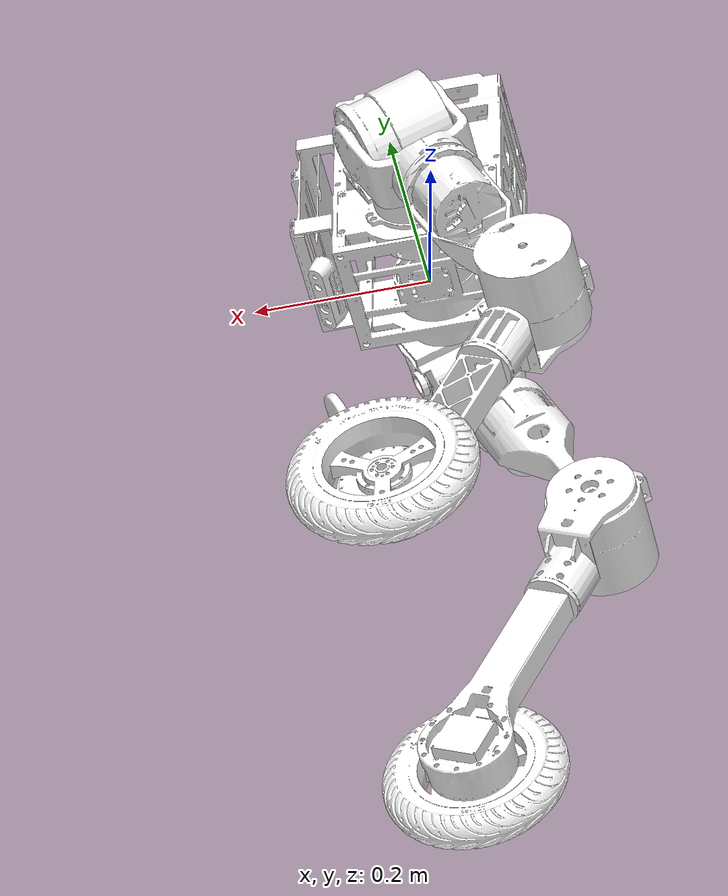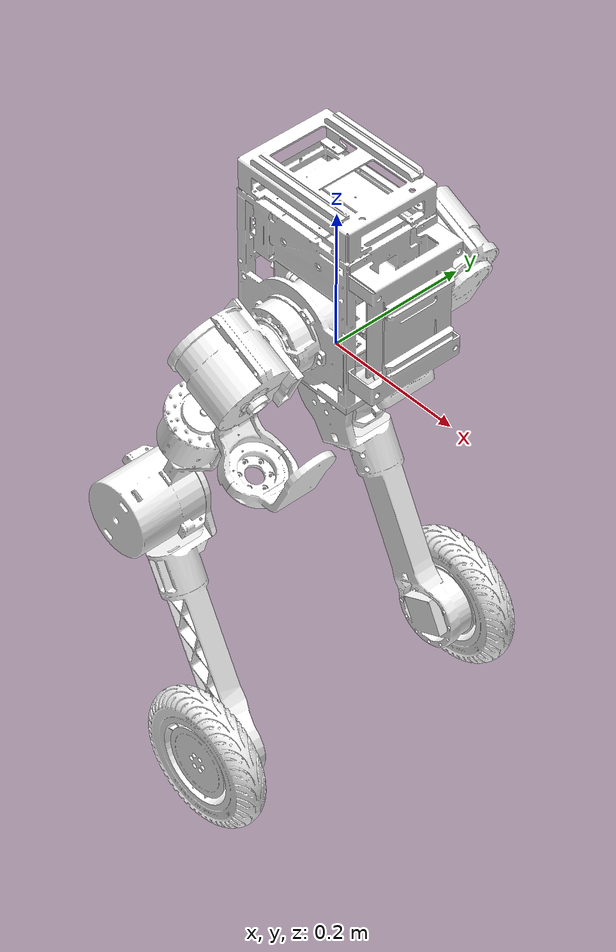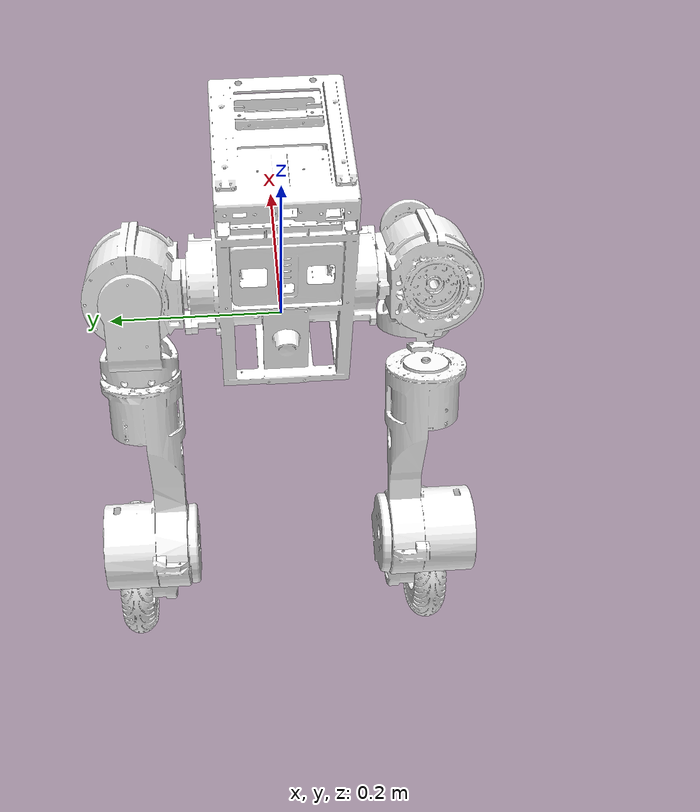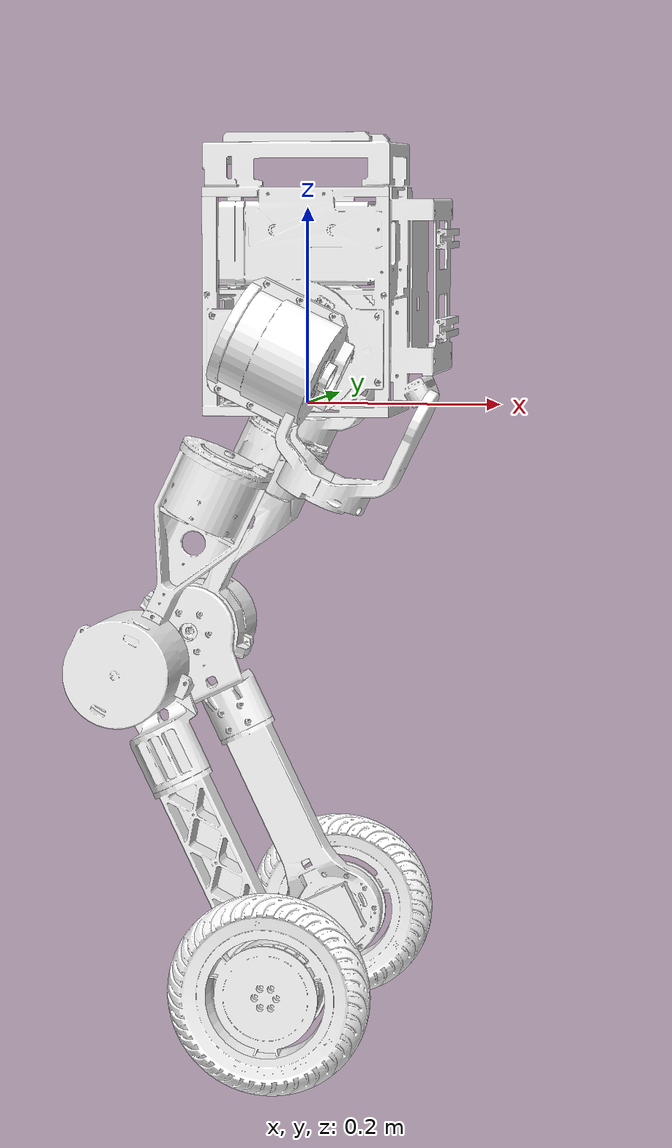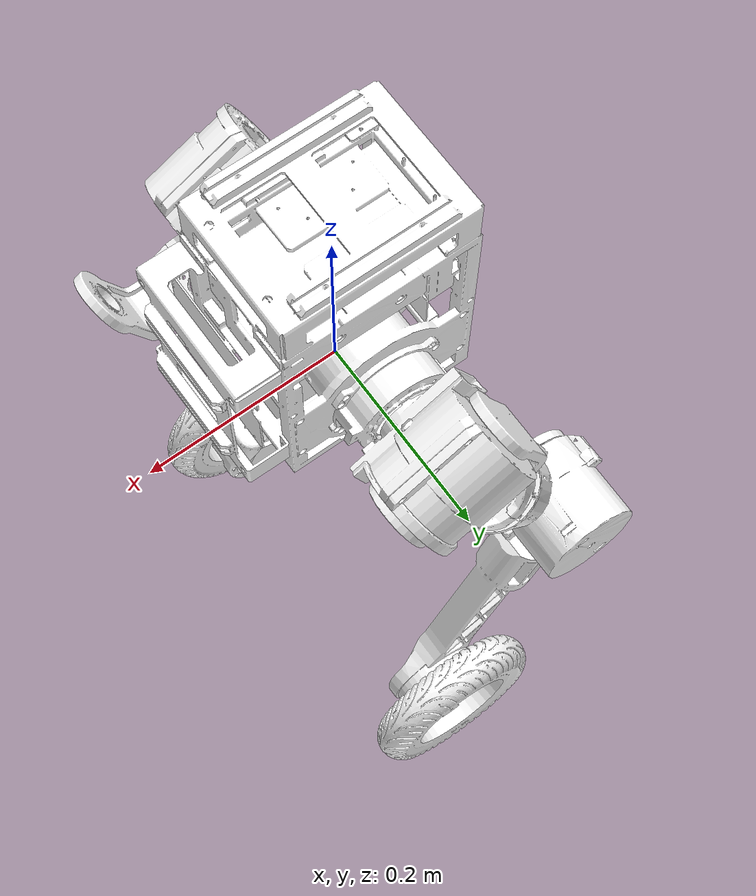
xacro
<?xml version="1.0"?>

<robot name="wf_tron2_description" xmlns:xacro="http://www.ros.org/wiki/xacro">
    <xacro:arg name="use_gazebo" default="false"/>
    <xacro:arg name="use_support" default="false"/>

    <!-- Include all component files -->
    <xacro:include filename="$(find robot_description)/tron2/WF_TRON2/xacro/const.xacro"/>
    <xacro:include filename="$(find robot_description)/tron2/WF_TRON2/xacro/materials.xacro"/>
    <xacro:include filename="$(find robot_description)/tron2/WF_TRON2/xacro/leg.xacro"/>
    <xacro:include filename="$(find robot_description)/tron2/WF_TRON2/xacro/gazebo.xacro"/>
    <xacro:include filename="$(find robot_description)/tron2/WF_TRON2/xacro/ros2_control_interface.xacro"/>

    <!-- Support mode will add an additional stick on the top -->
    <xacro:if value="$(arg use_support)">
        <link name="world"/>
        <joint name="base_static_Joint" type="fixed">
            <origin rpy="0 0 0" xyz="0 0 0.3"/>
            <parent link="world"/>
            <child link="base_Link"/>
        </joint>
    </xacro:if>

    <!-- Base Link -->
    <link name="base_Link">
        <inertial>
            <origin xyz="${base_com_x} ${base_com_y} ${base_com_z}" rpy="0 0 0"/>
            <mass value="${base_mass}"/>
            <inertia ixx="${base_ixx}" ixy="${base_ixy}" ixz="${base_ixz}"
                     iyy="${base_iyy}" iyz="${base_iyz}" izz="${base_izz}"/>
        </inertial>
        <visual>
            <origin xyz="0 0 0" rpy="0 0 0"/>
            <geometry>
                <mesh filename="package://robot_description/tron2/WF_TRON2/meshes/base_Link.STL"/>
            </geometry>
            <material name="grey"/>
        </visual>
        <collision>
            <origin xyz="0 0 0" rpy="0 0 0"/>
            <geometry>
                <mesh filename="package://robot_description/tron2/WF_TRON2/meshes/base_Link.STL"/>
            </geometry>
        </collision>
    </link>

    <!-- IMU Link -->
    <joint name="limx_imu_joint" type="fixed">
        <origin rpy="0. 0. 0." xyz="0. 0. 0."/>
        <parent link="base_Link"/>
        <child link="limx_imu"/>
    </joint>

    <link name="limx_imu">
        <inertial>
            <mass value="${imu_mass}"/>
            <origin rpy="0 0 0" xyz="0 0 0"/>
            <inertia ixx="0.000001" ixy="0" ixz="0" iyy="0.000001" iyz="0" izz="0.000001"/>
        </inertial>
        <visual>
            <origin rpy="0 0 0" xyz="0 0 0"/>
            <geometry>
                <box size="0.015 0.015 0.004"/>
            </geometry>
            <material name="orange"/>
        </visual>
        <collision>
            <origin rpy="0 0 0" xyz="0 0 0"/>
            <geometry>
                <box size=".001 .001 .001"/>
            </geometry>
        </collision>
    </link>

    <!-- Additional IMU link for ros2_control compatibility -->
    <joint name="imu_Joint" type="fixed">
        <parent link="base_Link"/>
        <child link="imu_Link"/>
        <origin rpy="0 0 0" xyz="0 0 0"/>
    </joint>

    <link name="imu_Link">
        <inertial>
            <mass value="0.001"/>
            <origin rpy="0 0 0" xyz="0 0 0"/>
            <inertia ixx="0.0001" ixy="0" ixz="0" iyy="0.0001" iyz="0" izz="0.0001"/>
        </inertial>
        <visual>
            <origin rpy="0 0 0" xyz="0 0 0"/>
            <geometry>
                <box size="0.015 0.015 0.004"/>
            </geometry>
        </visual>
        <collision>
            <origin rpy="0 0 0" xyz="0 0 0"/>
            <geometry>
                <box size=".001 .001 .001"/>
            </geometry>
        </collision>
    </link>

    <!-- Left and Right Legs -->
    <xacro:leg name="L" mirror="1">
        <origin rpy="0 0 0" xyz="0 0 0"/>
    </xacro:leg>

    <xacro:leg name="R" mirror="-1">
        <origin rpy="0 0 0" xyz="0 0 0"/>
    </xacro:leg>

    <!-- ROS2 Control Configuration -->
    <xacro:if value="$(arg use_gazebo)">
        <ros2_control name="tron2_gazebo_ros2_control_settings" type="system">
            <hardware>
                <plugin>tron2_gazebo/Tron2HWSim</plugin>
            </hardware>
            <xacro:leg_ros2_control_interface leg_name="L"/>
            <xacro:leg_ros2_control_interface leg_name="R"/>
            <sensor name="imu_sensor">
                <frame_id name="imu_Link"/>
                <state_interface name="orientation.x"/>
                <state_interface name="orientation.y"/>
                <state_interface name="orientation.z"/>
                <state_interface name="orientation.w"/>
                <state_interface name="angular_velocity.x"/>
                <state_interface name="angular_velocity.y"/>
                <state_interface name="angular_velocity.z"/>
                <state_interface name="linear_acceleration.x"/>
                <state_interface name="linear_acceleration.y"/>
                <state_interface name="linear_acceleration.z"/>
            </sensor>
        </ros2_control>

        <gazebo>
            <plugin filename="libgazebo_ros2_control.so" name="gazebo_ros2_control">
                <robot_sim_type>tron2_gazebo/Tron2HWSim</robot_sim_type>
                <parameters>$(find tron2_gazebo)/config/default_tron2.yaml</parameters>
            </plugin>
        </gazebo>
    </xacro:if>

</robot>

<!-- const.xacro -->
<robot name="wf_tron2" xmlns:xacro="http://www.ros.org/wiki/xacro">

    <!-- Constants for robot dimensions -->
    <xacro:property name="PI" value="3.1415926535897931"/>
    <xacro:property name="damping" value="0.0"/>
    <xacro:property name="friction" value="0.0"/>

    <!-- IMU parameters -->
    <xacro:property name="imu_mass" value="0.01"/>

    <!-- Base Link parameters -->
    <xacro:property name="base_mass" value="8.04083"/>
    <xacro:property name="base_com_x" value="0.00701"/>
    <xacro:property name="base_com_y" value="4e-05"/>
    <xacro:property name="base_com_z" value="0.10026"/>
    <xacro:property name="base_ixx" value="0.06521"/>
    <xacro:property name="base_ixy" value="0.00026"/>
    <xacro:property name="base_ixz" value="0.00155"/>
    <xacro:property name="base_iyy" value="0.06713"/>
    <xacro:property name="base_iyz" value="-1e-05"/>
    <xacro:property name="base_izz" value="0.05827"/>

    <!-- Abad Link parameters (left) -->
    <xacro:property name="abad_mass" value="2.42561"/>
    <xacro:property name="abad_com_x" value="0.00951"/>
    <xacro:property name="abad_com_y" value="0.05904"/>
    <xacro:property name="abad_com_z" value="-0.00467"/>
    <xacro:property name="abad_ixx" value="0.00389"/>
    <xacro:property name="abad_ixy" value="-8e-05"/>
    <xacro:property name="abad_ixz" value="8e-05"/>
    <xacro:property name="abad_iyy" value="0.00414"/>
    <xacro:property name="abad_iyz" value="4e-05"/>
    <xacro:property name="abad_izz" value="0.00404"/>

    <!-- Hip Link parameters (left) -->
    <xacro:property name="hip_mass" value="0.50271"/>
    <xacro:property name="hip_com_x" value="-0.06846"/>
    <xacro:property name="hip_com_y" value="0.00027"/>
    <xacro:property name="hip_com_z" value="-0.0321"/>
    <xacro:property name="hip_ixx" value="0.00125"/>
    <xacro:property name="hip_ixy" value="0"/>
    <xacro:property name="hip_ixz" value="1e-05"/>
    <xacro:property name="hip_iyy" value="0.00205"/>
    <xacro:property name="hip_iyz" value="1e-05"/>
    <xacro:property name="hip_izz" value="0.00131"/>

    <!-- Yaw Link parameters (left) -->
    <xacro:property name="yaw_mass" value="3.43624"/>
    <xacro:property name="yaw_com_x" value="-0.07354"/>
    <xacro:property name="yaw_com_y" value="-0.00574"/>
    <xacro:property name="yaw_com_z" value="-0.1532"/>
    <xacro:property name="yaw_ixx" value="0.02949"/>
    <xacro:property name="yaw_ixy" value="-0.00017"/>
    <xacro:property name="yaw_ixz" value="-0.01187"/>
    <xacro:property name="yaw_iyy" value="0.03527"/>
    <xacro:property name="yaw_iyz" value="-0.00034"/>
    <xacro:property name="yaw_izz" value="0.0104"/>

    <!-- Knee Link parameters (left) -->
    <xacro:property name="knee_mass" value="1.9798"/>
    <xacro:property name="knee_com_x" value="0.10281"/>
    <xacro:property name="knee_com_y" value="0.04222"/>
    <xacro:property name="knee_com_z" value="-0.21372"/>
    <xacro:property name="knee_ixx" value="0.0295"/>
    <xacro:property name="knee_ixy" value="-0.00206"/>
    <xacro:property name="knee_ixz" value="0.01308"/>
    <xacro:property name="knee_iyy" value="0.0354"/>
    <xacro:property name="knee_iyz" value="0.00428"/>
    <xacro:property name="knee_izz" value="0.00858"/>

    <!-- Wheel Link parameters -->
    <xacro:property name="wheel_mass" value="0.75"/>
    <xacro:property name="wheel_com_x" value="0.00012"/>
    <xacro:property name="wheel_com_y" value="0.004"/>
    <xacro:property name="wheel_com_z" value="-0.00064"/>
    <xacro:property name="wheel_ixx" value="0.00236"/>
    <xacro:property name="wheel_ixy" value="0"/>
    <xacro:property name="wheel_ixz" value="1e-05"/>
    <xacro:property name="wheel_iyy" value="0.00447"/>
    <xacro:property name="wheel_iyz" value="0"/>
    <xacro:property name="wheel_izz" value="0.00231"/>

    <!-- Joint positions and orientations -->
    <!-- Abad joint position -->
    <xacro:property name="abad_offset_x" value="-0.00049"/>
    <xacro:property name="abad_offset_y" value="0.10649"/>
    <xacro:property name="abad_offset_z" value="0.0586"/>

    <!-- Hip joint position -->
    <xacro:property name="hip_offset_x" value="0.0448"/>
    <xacro:property name="hip_offset_y" value="0.062"/>
    <xacro:property name="hip_offset_z" value="-0.02152"/>

    <!-- Yaw joint position -->
    <xacro:property name="yaw_offset_x" value="-0.0936"/>
    <xacro:property name="yaw_offset_y" value="0.0"/>
    <xacro:property name="yaw_offset_z" value="-0.08006"/>

    <!-- Knee joint position -->
    <xacro:property name="knee_offset_x" value="-0.10276"/>
    <xacro:property name="knee_offset_y" value="-0.04115"/>
    <xacro:property name="knee_offset_z" value="-0.21389"/>

    <!-- Wheel joint position -->
    <xacro:property name="wheel_offset_x" value="0.15161"/>
    <xacro:property name="wheel_offset_y" value="0.09165"/>
    <xacro:property name="wheel_offset_z" value="-0.31546"/>

    <!-- Joint limits -->
    <!-- Abad joint limits -->
    <xacro:property name="abad_lower" value="-3.5894441396515377"/>
    <xacro:property name="abad_upper" value="2.1526890994098062"/>
    <xacro:property name="abad_effort" value="140"/>
    <xacro:property name="abad_velocity" value="12.57"/>

    <!-- Hip joint limits -->
    <xacro:property name="hip_L_lower" value="-0.2605776573227534"/>
    <xacro:property name="hip_L_upper" value="2.1131489961203007"/>
    <xacro:property name="hip_R_lower" value="-2.1131489961203007"/>
    <xacro:property name="hip_R_upper" value="0.2605776573227534"/>
    <xacro:property name="hip_effort" value="140"/>
    <xacro:property name="hip_velocity" value="12.57"/>

    <!-- Yaw joint limits -->
    <xacro:property name="yaw_L_lower" value="-2.705260340591211"/>
    <xacro:property name="yaw_L_upper" value="1.4835298641951802"/>
    <xacro:property name="yaw_R_lower" value="-1.4835298641951802"/>
    <xacro:property name="yaw_R_upper" value="2.705260340591211"/>
    <xacro:property name="yaw_effort" value="40"/>
    <xacro:property name="yaw_velocity" value="31.83"/>

    <!-- Knee joint limits -->
    <xacro:property name="knee_lower" value="-1.7221163729428048"/>
    <xacro:property name="knee_upper" value="3.5138713830401835"/>
    <xacro:property name="knee_effort" value="140"/>
    <xacro:property name="knee_velocity" value="12.57"/>

    <!-- Wheel joint limits -->
    <xacro:property name="wheel_lower" value="-1745329.2519943293"/>
    <xacro:property name="wheel_upper" value="1745329.2519943293"/>
    <xacro:property name="wheel_effort" value="22"/>
    <xacro:property name="wheel_velocity" value="41.89"/>

    <!-- Hip joint axis for left and right legs -->
    <xacro:property name="hip_axis_x" value="0.90138"/>
    <xacro:property name="hip_axis_y" value="0"/>
    <xacro:property name="hip_axis_z" value="-0.43303"/>

    <!-- Yaw joint axis for left and right legs -->
    <xacro:property name="yaw_axis_x" value="0.43303"/>
    <xacro:property name="yaw_axis_y" value="0"/>
    <xacro:property name="yaw_axis_z" value="0.90138"/>

</robot>

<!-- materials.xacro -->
<robot>
    <material name="grey">
        <color rgba="1 1 1 1"/>
    </material>
    <material name="white">
        <color rgba="1.0 1.0 1.0 1.0"/>
    </material>
    <material name="orange">
        <color rgba="1.0 0.423 0.039 1.0"/>
    </material>
</robot>

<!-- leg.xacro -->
<robot xmlns:xacro="http://www.ros.org/wiki/xacro">

    <xacro:include filename="$(find robot_description)/tron2/WF_TRON2/xacro/transmission.xacro"/>

    <xacro:macro name="leg" params="name mirror *origin">

        <joint name="abad_${name}_Joint" type="revolute">
            <origin xyz="${abad_offset_x} ${abad_offset_y*mirror} ${abad_offset_z}" rpy="0 0 0"/>
            <parent link="base_Link"/>
            <child link="abad_${name}_Link"/>
            <axis xyz="0 1 0"/>
            <limit lower="${abad_lower}" upper="${abad_upper}" effort="${abad_effort}" velocity="${abad_velocity}"/>
        </joint>

        <link name="abad_${name}_Link">
            <inertial>
                <origin xyz="${abad_com_x} ${abad_com_y*mirror} ${abad_com_z}" rpy="0 0 0"/>
                <mass value="${abad_mass}"/>
                <inertia ixx="${abad_ixx}" ixy="${abad_ixy*mirror}" ixz="${abad_ixz}"
                         iyy="${abad_iyy}" iyz="${abad_iyz*mirror}" izz="${abad_izz}"/>
            </inertial>
            <visual>
                <origin xyz="0 0 0" rpy="0 0 0"/>
                <geometry>
                    <mesh filename="package://robot_description/tron2/WF_TRON2/meshes/abad_${name}_Link.STL"/>
                </geometry>
                <material name="grey"/>
            </visual>
            <collision>
                <origin xyz="0 0 0" rpy="0 0 0"/>
                <geometry>
                    <mesh filename="package://robot_description/tron2/WF_TRON2/meshes/abad_${name}_Link.STL"/>
                </geometry>
            </collision>
        </link>

        <joint name="hip_${name}_Joint" type="revolute">
            <origin xyz="${hip_offset_x} ${hip_offset_y*mirror} ${hip_offset_z}" rpy="0 0 0"/>
            <parent link="abad_${name}_Link"/>
            <child link="hip_${name}_Link"/>
            <axis xyz="${hip_axis_x} ${hip_axis_y} ${hip_axis_z}"/>
            <xacro:if value="${name == 'L'}">
                <limit lower="${hip_L_lower}" upper="${hip_L_upper}" effort="${hip_effort}" velocity="${hip_velocity}"/>
            </xacro:if>
            <xacro:if value="${name == 'R'}">
                <limit lower="${hip_R_lower}" upper="${hip_R_upper}" effort="${hip_effort}" velocity="${hip_velocity}"/>
            </xacro:if>
        </joint>

        <link name="hip_${name}_Link">
            <inertial>
                <origin xyz="${hip_com_x} ${hip_com_y*mirror} ${hip_com_z}" rpy="0 0 0"/>
                <mass value="${hip_mass}"/>
                <inertia ixx="${hip_ixx}" ixy="${hip_ixy*mirror}" ixz="${hip_ixz}"
                         iyy="${hip_iyy}" iyz="${hip_iyz*mirror}" izz="${hip_izz}"/>
            </inertial>
            <visual>
                <origin xyz="0 0 0" rpy="0 0 0"/>
                <geometry>
                    <mesh filename="package://robot_description/tron2/WF_TRON2/meshes/hip_${name}_Link.STL"/>
                </geometry>
                <material name="grey"/>
            </visual>
            <collision>
                <origin xyz="0 0 0" rpy="0 0 0"/>
                <geometry>
                    <mesh filename="package://robot_description/tron2/WF_TRON2/meshes/hip_${name}_Link.STL"/>
                </geometry>
            </collision>
        </link>

        <joint name="yaw_${name}_Joint" type="revolute">
            <origin xyz="${yaw_offset_x} ${yaw_offset_y*mirror} ${yaw_offset_z}" rpy="0 0 0"/>
            <parent link="hip_${name}_Link"/>
            <child link="yaw_${name}_Link"/>
            <axis xyz="${yaw_axis_x} ${yaw_axis_y} ${yaw_axis_z}"/>
            <xacro:if value="${name == 'L'}">
                <limit lower="${yaw_L_lower}" upper="${yaw_L_upper}" effort="${yaw_effort}" velocity="${yaw_velocity}"/>
            </xacro:if>
            <xacro:if value="${name == 'R'}">
                <limit lower="${yaw_R_lower}" upper="${yaw_R_upper}" effort="${yaw_effort}" velocity="${yaw_velocity}"/>
            </xacro:if>
        </joint>

        <link name="yaw_${name}_Link">
            <inertial>
                <origin xyz="${yaw_com_x} ${yaw_com_y*mirror} ${yaw_com_z}" rpy="0 0 0"/>
                <mass value="${yaw_mass}"/>
                <inertia ixx="${yaw_ixx}" ixy="${yaw_ixy*mirror}" ixz="${yaw_ixz}"
                         iyy="${yaw_iyy}" iyz="${yaw_iyz*mirror}" izz="${yaw_izz}"/>
            </inertial>
            <visual>
                <origin xyz="0 0 0" rpy="0 0 0"/>
                <geometry>
                    <mesh filename="package://robot_description/tron2/WF_TRON2/meshes/yaw_${name}_Link.STL"/>
                </geometry>
                <material name="grey"/>
            </visual>
            <collision>
                <origin xyz="0 0 0" rpy="0 0 0"/>
                <geometry>
                    <mesh filename="package://robot_description/tron2/WF_TRON2/meshes/yaw_${name}_Link.STL"/>
                </geometry>
            </collision>
        </link>

        <joint name="knee_${name}_Joint" type="revolute">
            <origin xyz="${knee_offset_x} ${knee_offset_y*mirror} ${knee_offset_z}" rpy="0 0 0"/>
            <parent link="yaw_${name}_Link"/>
            <child link="knee_${name}_Link"/>
            <axis xyz="0 1 0"/>
            <limit lower="${knee_lower}" upper="${knee_upper}" effort="${knee_effort}" velocity="${knee_velocity}"/>
        </joint>

        <link name="knee_${name}_Link">
            <inertial>
                <origin xyz="${knee_com_x} ${knee_com_y*mirror} ${knee_com_z}" rpy="0 0 0"/>
                <mass value="${knee_mass}"/>
                <inertia ixx="${knee_ixx}" ixy="${knee_ixy*mirror}" ixz="${knee_ixz}"
                         iyy="${knee_iyy}" iyz="${knee_iyz*mirror}" izz="${knee_izz}"/>
            </inertial>
            <visual>
                <origin xyz="0 0 0" rpy="0 0 0"/>
                <geometry>
                    <mesh filename="package://robot_description/tron2/WF_TRON2/meshes/knee_${name}_Link.STL"/>
                </geometry>
                <material name="grey"/>
            </visual>
            <collision>
                <origin xyz="0 0 0" rpy="0 0 0"/>
                <geometry>
                    <mesh filename="package://robot_description/tron2/WF_TRON2/meshes/knee_${name}_Link.STL"/>
                </geometry>
            </collision>
        </link>

        <joint name="wheel_${name}_Joint" type="revolute">
            <origin xyz="${wheel_offset_x} ${wheel_offset_y*mirror} ${wheel_offset_z}" rpy="0 0 0"/>
            <parent link="knee_${name}_Link"/>
            <child link="wheel_${name}_Link"/>
            <axis xyz="0 1 0"/>
            <limit lower="${wheel_lower}" upper="${wheel_upper}" effort="${wheel_effort}" velocity="${wheel_velocity}"/>
        </joint>

        <link name="wheel_${name}_Link">
            <inertial>
                <origin xyz="${wheel_com_x} ${wheel_com_y*mirror} ${wheel_com_z}" rpy="0 0 0"/>
                <mass value="${wheel_mass}"/>
                <inertia ixx="${wheel_ixx}" ixy="${wheel_ixy*mirror}" ixz="${wheel_ixz}"
                         iyy="${wheel_iyy}" iyz="${wheel_iyz*mirror}" izz="${wheel_izz}"/>
            </inertial>
            <visual>
                <origin xyz="0 0 0" rpy="0 0 0"/>
                <geometry>
                    <mesh filename="package://robot_description/tron2/WF_TRON2/meshes/wheel_${name}_Link.STL"/>
                </geometry>
                <material name="grey"/>
            </visual>
            <collision>
                <origin xyz="0 0 0" rpy="0 0 0"/>
                <geometry>
                    <mesh filename="package://robot_description/tron2/WF_TRON2/meshes/wheel_${name}_Link.STL"/>
                </geometry>
            </collision>
        </link>

        <xacro:leg_transmission name="${name}"/>
    </xacro:macro>

</robot>
